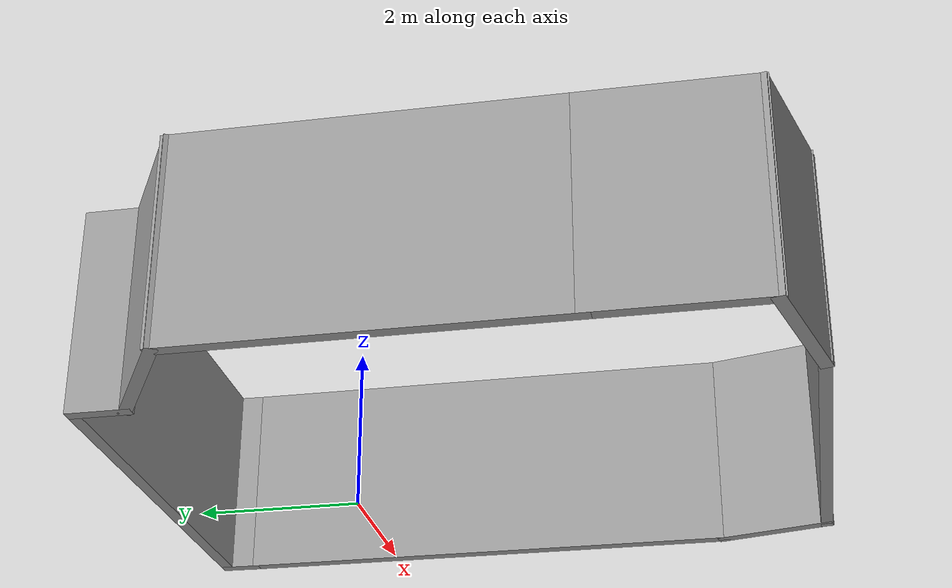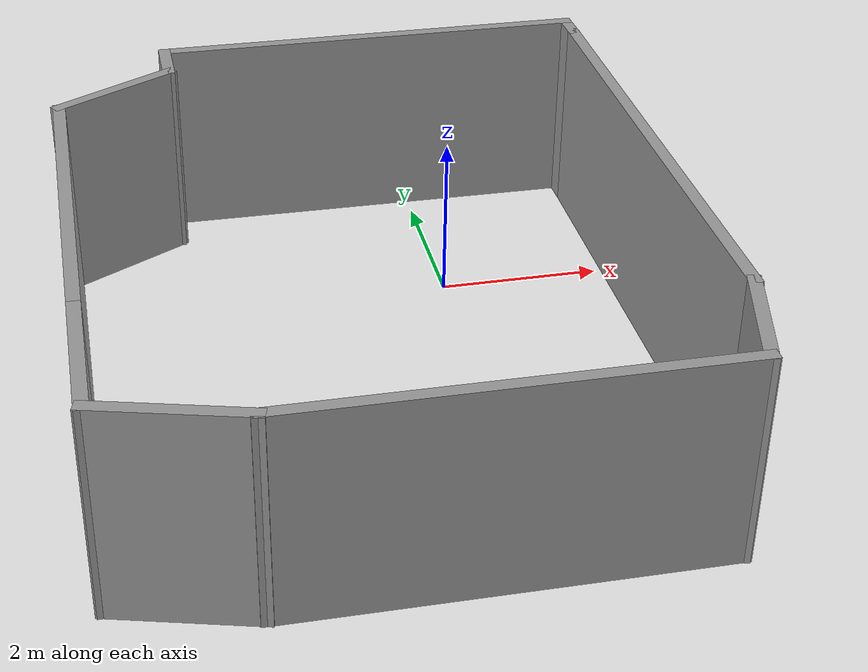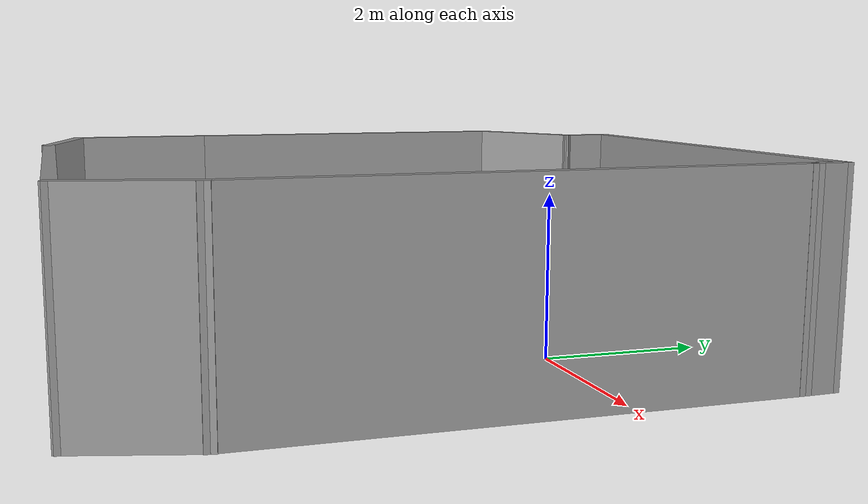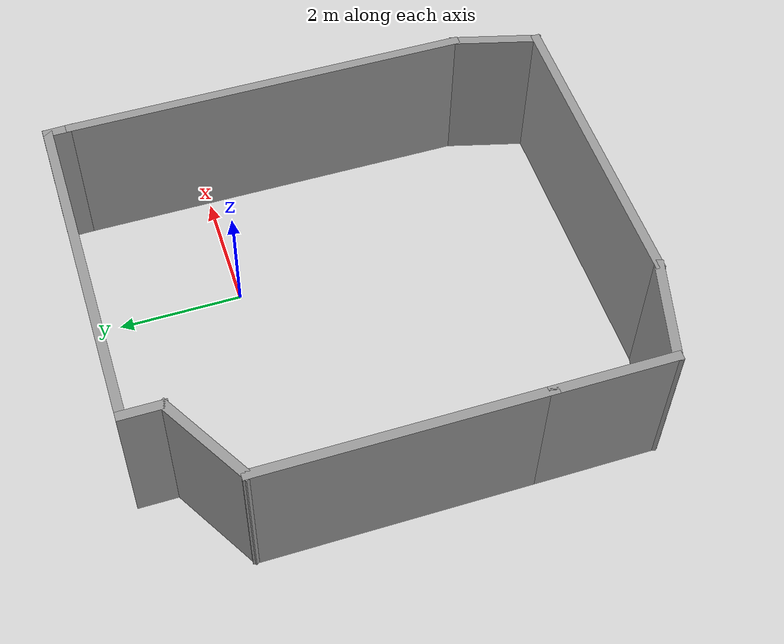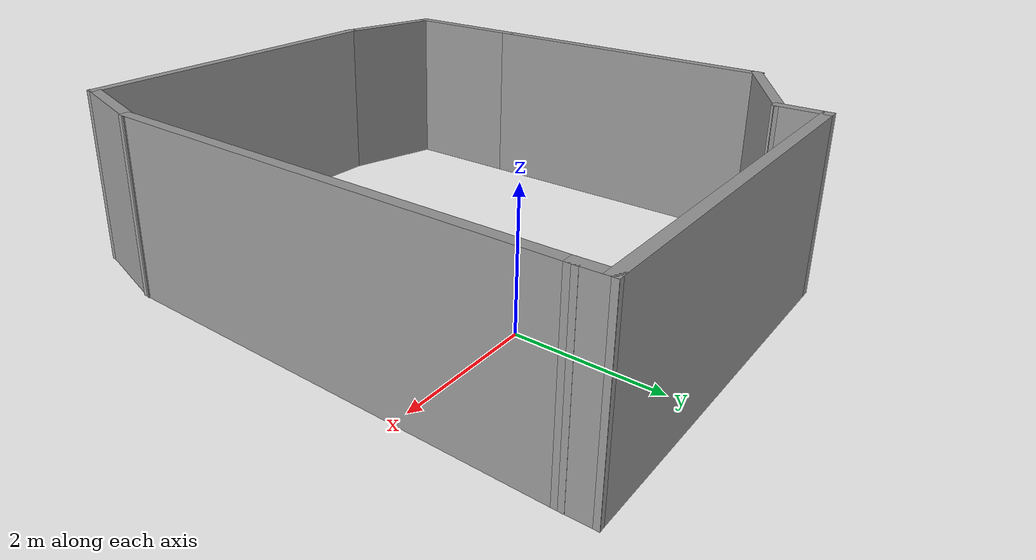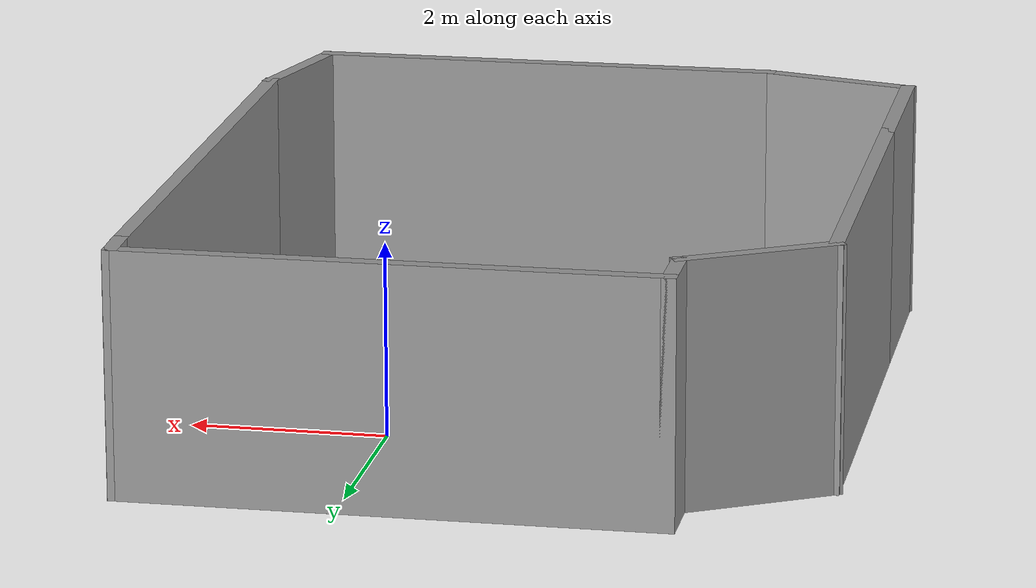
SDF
<?xml version='1.0'?>
<sdf version='1.7'>
  <model name='newsupermarketwall'>
    <pose>-1.21834 -1.65042 0 0 -0 0</pose>
    <link name='Wall_0'>
      <collision name='Wall_0_Collision'>
        <geometry>
          <box>
            <size>5 0.15 2.5</size>
          </box>
        </geometry>
        <pose>0 0 1.25 0 -0 0</pose>
      </collision>
      <visual name='Wall_0_Visual'>
        <pose>0 0 1.25 0 -0 0</pose>
        <geometry>
          <box>
            <size>5 0.15 2.5</size>
          </box>
        </geometry>
        <material>
          <script>
            <uri>file://media/materials/scripts/gazebo.material</uri>
            <name>Gazebo/Grey</name>
          </script>
          <ambient>1 1 1 1</ambient>
        </material>
        <meta>
          <layer>0</layer>
        </meta>
      </visual>
      <pose>0.603336 -3.99958 0 0 -0 0</pose>
    </link>
    <link name='Wall_10'>
      <collision name='Wall_10_Collision'>
        <geometry>
          <box>
            <size>1.75 0.15 2.5</size>
          </box>
        </geometry>
        <pose>0 0 1.25 0 -0 0</pose>
      </collision>
      <visual name='Wall_10_Visual'>
        <pose>0 0 1.25 0 -0 0</pose>
        <geometry>
          <box>
            <size>1.75 0.15 2.5</size>
          </box>
        </geometry>
        <material>
          <script>
            <uri>file://media/materials/scripts/gazebo.material</uri>
            <name>Gazebo/Grey</name>
          </script>
          <ambient>1 1 1 1</ambient>
        </material>
        <meta>
          <layer>0</layer>
        </meta>
      </visual>
      <pose>-2.59441 -3.79252 0 0 -0 2.87979</pose>
    </link>
    <link name='Wall_11'>
      <collision name='Wall_11_Collision'>
        <geometry>
          <box>
            <size>2 0.15 2.5</size>
          </box>
        </geometry>
        <pose>0 0 1.25 0 -0 0</pose>
      </collision>
      <visual name='Wall_11_Visual'>
        <pose>0 0 1.25 0 -0 0</pose>
        <geometry>
          <box>
            <size>2 0.15 2.5</size>
          </box>
        </geometry>
        <material>
          <script>
            <uri>file://media/materials/scripts/gazebo.material</uri>
            <name>Gazebo/Grey</name>
          </script>
          <ambient>1 1 1 1</ambient>
        </material>
        <meta>
          <layer>0</layer>
        </meta>
      </visual>
      <pose>-3.36714 -2.66047 0 0 -0 1.5708</pose>
    </link>
    <link name='Wall_12'>
      <collision name='Wall_12_Collision'>
        <geometry>
          <box>
            <size>4.5 0.15 2.5</size>
          </box>
        </geometry>
        <pose>0 0 1.25 0 -0 0</pose>
      </collision>
      <visual name='Wall_12_Visual'>
        <pose>0 0 1.25 0 -0 0</pose>
        <geometry>
          <box>
            <size>4.5 0.15 2.5</size>
          </box>
        </geometry>
        <material>
          <script>
            <uri>file://media/materials/scripts/gazebo.material</uri>
            <name>Gazebo/Grey</name>
          </script>
          <ambient>1 1 1 1</ambient>
        </material>
        <meta>
          <layer>0</layer>
        </meta>
      </visual>
      <pose>-3.36714 0.439533 0 0 -0 1.5708</pose>
    </link>
    <link name='Wall_13'>
      <collision name='Wall_13_Collision'>
        <geometry>
          <box>
            <size>1.75 0.15 2.5</size>
          </box>
        </geometry>
        <pose>0 0 1.25 0 -0 0</pose>
      </collision>
      <visual name='Wall_13_Visual'>
        <pose>0 0 1.25 0 -0 0</pose>
        <geometry>
          <box>
            <size>1.75 0.15 2.5</size>
          </box>
        </geometry>
        <material>
          <script>
            <uri>file://media/materials/scripts/gazebo.material</uri>
            <name>Gazebo/Grey</name>
          </script>
          <ambient>1 1 1 1</ambient>
        </material>
        <meta>
          <layer>0</layer>
        </meta>
      </visual>
      <pose>-2.67433 3.01453 0 0 -0 0.523599</pose>
    </link>
    <link name='Wall_14'>
      <collision name='Wall_14_Collision'>
        <geometry>
          <box>
            <size>0.75 0.15 2.5</size>
          </box>
        </geometry>
        <pose>0 0 1.25 0 -0 0</pose>
      </collision>
      <visual name='Wall_14_Visual'>
        <pose>0 0 1.25 0 -0 0</pose>
        <geometry>
          <box>
            <size>0.75 0.15 2.5</size>
          </box>
        </geometry>
        <material>
          <script>
            <uri>file://media/materials/scripts/gazebo.material</uri>
            <name>Gazebo/Grey</name>
          </script>
          <ambient>1 1 1 1</ambient>
        </material>
        <meta>
          <layer>0</layer>
        </meta>
      </visual>
      <pose>-1.98151 3.71453 0 0 -0 1.5708</pose>
    </link>
    <link name='Wall_15'>
      <collision name='Wall_15_Collision'>
        <geometry>
          <box>
            <size>5.5 0.15 2.5</size>
          </box>
        </geometry>
        <pose>0 0 1.25 0 -0 0</pose>
      </collision>
      <visual name='Wall_15_Visual'>
        <pose>0 0 1.25 0 -0 0</pose>
        <geometry>
          <box>
            <size>5.5 0.15 2.5</size>
          </box>
        </geometry>
        <material>
          <script>
            <uri>file://media/materials/scripts/gazebo.material</uri>
            <name>Gazebo/Grey</name>
          </script>
          <ambient>1 1 1 1</ambient>
        </material>
        <meta>
          <layer>0</layer>
        </meta>
      </visual>
      <pose>0.693495 4.01453 0 0 -0 0</pose>
    </link>
    <link name='Wall_16'>
      <collision name='Wall_16_Collision'>
        <geometry>
          <box>
            <size>0.510229 0.15 2.5</size>
          </box>
        </geometry>
        <pose>0 0 1.25 0 -0 0</pose>
      </collision>
      <visual name='Wall_16_Visual'>
        <pose>0 0 1.25 0 -0 0</pose>
        <geometry>
          <box>
            <size>0.510229 0.15 2.5</size>
          </box>
        </geometry>
        <material>
          <script>
            <uri>file://media/materials/scripts/gazebo.material</uri>
            <name>Gazebo/Grey</name>
          </script>
          <ambient>1 1 1 1</ambient>
        </material>
        <meta>
          <layer>0</layer>
        </meta>
      </visual>
      <pose>3.37312 3.83448 0 0 -0 -1.54513</pose>
    </link>
    <link name='Wall_2'>
      <collision name='Wall_2_Collision'>
        <geometry>
          <box>
            <size>1.5 0.15 2.5</size>
          </box>
        </geometry>
        <pose>0 0 1.25 0 -0 0</pose>
      </collision>
      <visual name='Wall_2_Visual'>
        <pose>0 0 1.25 0 -0 0</pose>
        <geometry>
          <box>
            <size>1.5 0.15 2.5</size>
          </box>
        </geometry>
        <material>
          <script>
            <uri>file://media/materials/scripts/gazebo.material</uri>
            <name>Gazebo/Grey</name>
          </script>
          <ambient>1 1 1 1</ambient>
        </material>
        <meta>
          <layer>0</layer>
        </meta>
      </visual>
      <pose>3.20304 -3.34758 0 0 -0 1.309</pose>
    </link>
    <link name='Wall_3'>
      <collision name='Wall_3_Collision'>
        <geometry>
          <box>
            <size>6.5 0.15 2.5</size>
          </box>
        </geometry>
        <pose>0 0 1.25 0 -0 0</pose>
      </collision>
      <visual name='Wall_3_Visual'>
        <pose>0 0 1.25 0 -0 0</pose>
        <geometry>
          <box>
            <size>6.5 0.15 2.5</size>
          </box>
        </geometry>
        <material>
          <script>
            <uri>file://media/materials/scripts/gazebo.material</uri>
            <name>Gazebo/Grey</name>
          </script>
          <ambient>1 1 1 1</ambient>
        </material>
        <meta>
          <layer>0</layer>
        </meta>
      </visual>
      <pose>3.37774 0.479423 0 0 -0 1.5708</pose>
    </link>
    <static>1</static>
  </model>
</sdf>
